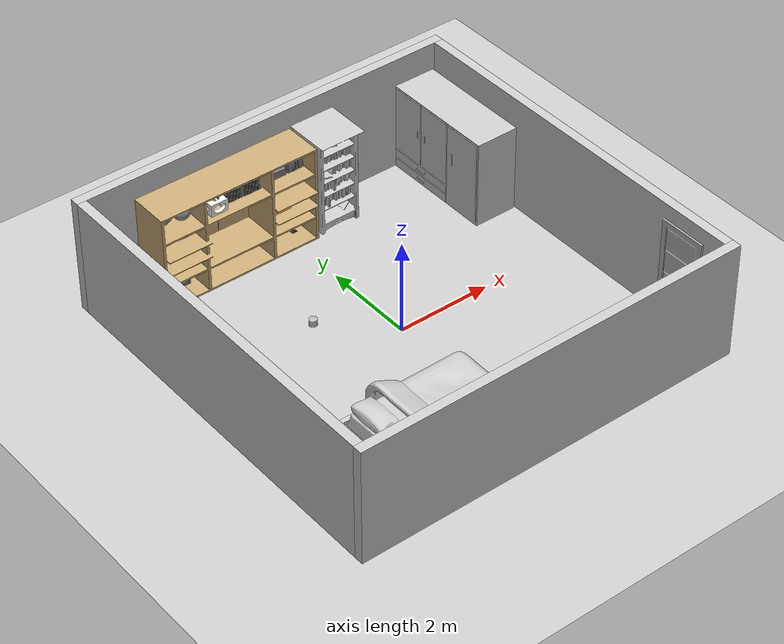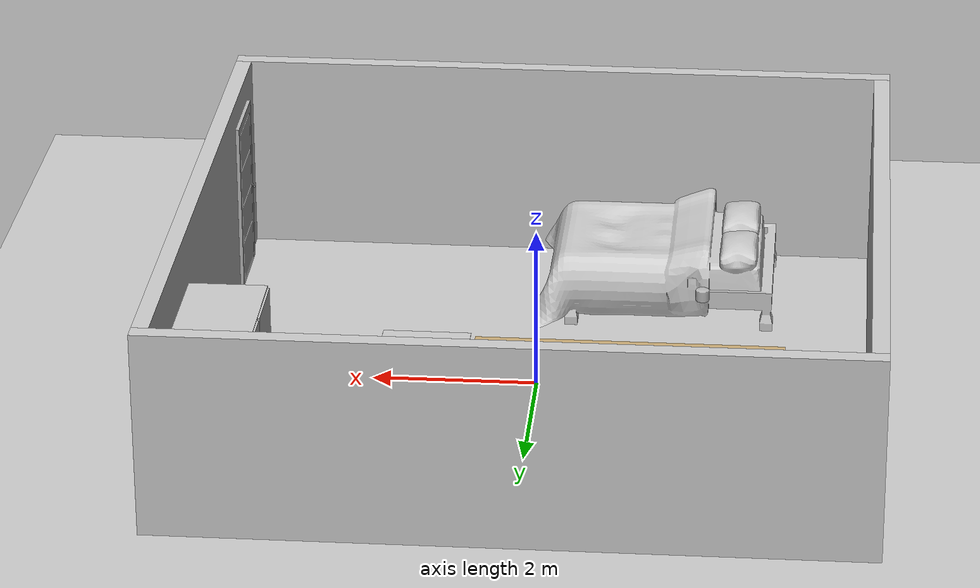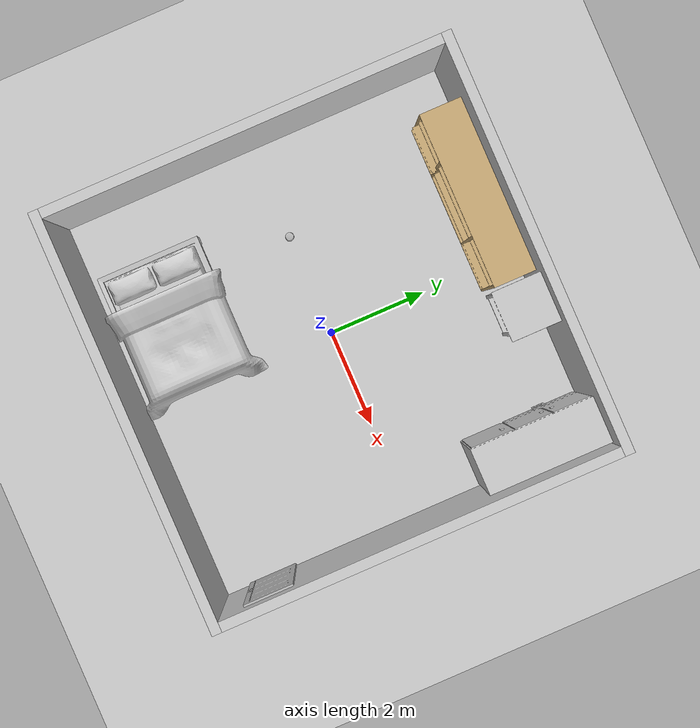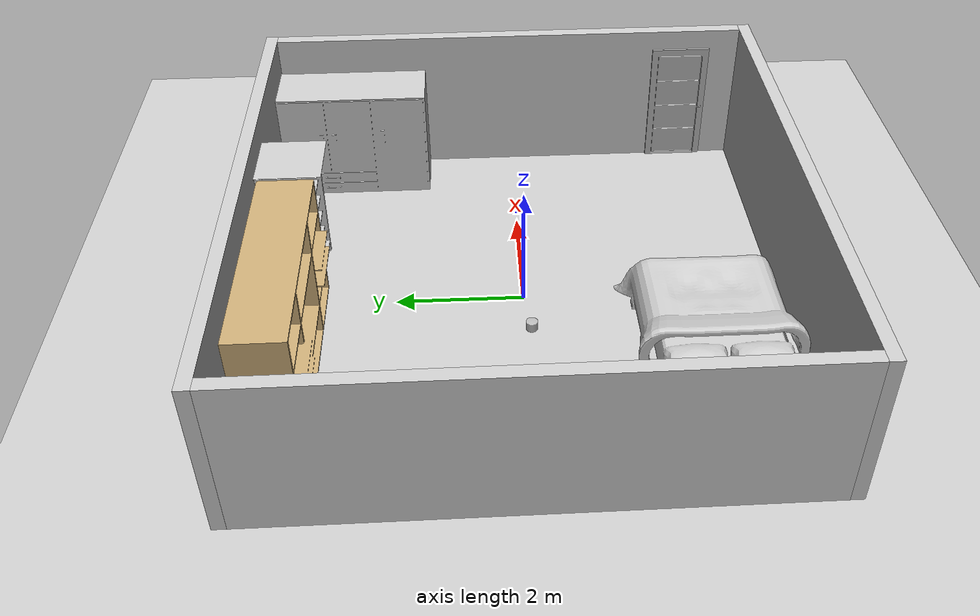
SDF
<sdf version="1.6">
 <world name="bedroom">
  <physics name="1ms" type="ignored">
   <max_step_size>0.001</max_step_size>
   <real_time_factor>1.0</real_time_factor>
  </physics>
  <plugin filename="gz-sim-physics-system" name="gz::sim::systems::Physics"/>
  <plugin filename="gz-sim-user-commands-system" name="gz::sim::systems::UserCommands"/>
  <plugin filename="gz-sim-scene-broadcaster-system" name="gz::sim::systems::SceneBroadcaster"/>
  <plugin filename="gz-sim-contact-system" name="gz::sim::systems::Contact"/>
  <plugin filename="libgz-sim-sensors-system.so" name="gz::sim::systems::Sensors">
   <render_engine>ogre2</render_engine>
  </plugin>
  <include><name>ground_plane</name><uri>gp_models/ground.sdf</uri></include>
  <include><name>light_model</name><uri>gp_models/light_model.sdf</uri></include>
  <include>
   <name>lidar_module</name>
   <uri>gp_models/lidar/lidar_module.sdf</uri>
   <pose>-2 0 1.2 0 0 0</pose>
  </include>
  <include><name>walls</name><uri>indoor_spaces/bedroom/walls.sdf</uri></include>
  <include>
   <name>bed</name>
   <uri>indoor_spaces/bedroom/bed.sdf</uri>
   <pose>-1.5 -2.75 0 0 0 3.14159</pose>
  </include>
  <include>
   <name>shelf1</name>
   <uri>indoor_spaces/bedroom/shelf1.sdf</uri>
   <pose>1 3.5 0 0 0 -1.570796</pose>
  </include>
  <include>
   <name>shelf2</name>
   <uri>indoor_spaces/bedroom/shelf2.sdf</uri>
   <pose>-1.3 3.5 0 0 0 -1.570796</pose>
  </include>
  <include>
   <name>closet1</name>
   <uri>indoor_spaces/bedroom/closet1.sdf</uri>
   <pose>3.5 2.75 0 0 0 3.14159</pose>
  </include>
  <include>
   <name>door</name>
   <uri>indoor_spaces/bedroom/door.sdf</uri>
   <pose>3.98 -3 0 0 0 3.14159</pose>
  </include>
 </world>
</sdf>

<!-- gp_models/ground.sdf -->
<sdf version="1.6">
	<model name="ground_plane">
		<static>true</static>
		<link name="link">
			<collision name="collision">
				<geometry>
					<plane>
						<normal>0 0 1</normal>
						<size>100 100</size>
					</plane>
				</geometry>
			</collision>
			<visual name="visual">
				<geometry>
					<plane>
						<normal>0 0 1</normal>
						<size>100 100</size>
					</plane>
				</geometry>
					<material>
						<ambient>0.8 0.8 0.8 1</ambient>
						<diffuse>0.8 0.8 0.8 1</diffuse>
						<specular>0.8 0.8 0.8 1</specular>
					</material>
			</visual>
		</link>
	</model>
</sdf>

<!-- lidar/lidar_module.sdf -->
<sdf version="1.6">
	<model name="lidar_module">
		<static>true</static>
		<link name="lidar_frame">
			<sensor name='gpu_lidar' type='gpu_lidar'>
				<pose>0 0 0 0 0 0</pose>
				<topic>lidar</topic>
				<update_rate>10</update_rate>
				<ray>
					<scan>
						<horizontal>
						    <samples>1024</samples>
						    <min_angle>0.0</min_angle>
						    <max_angle>6.2831</max_angle>
						</horizontal>
						<vertical>
						    <samples>64</samples>
						    <min_angle>-0.2897</min_angle>
						    <max_angle>0.2897</max_angle>
						</vertical>
					</scan>
					<range>
						<min>0.08</min>
						<max>100</max>
					</range>
					<noise>
						<type>gaussian</type>
						<mean>0.0</mean>
						<stddev>0.03</stddev>
					 </noise>
				</ray>
				<always_on>1</always_on>
				<visualize>true</visualize>
			</sensor>
			<visual name="lidar_visual">
				<geometry>
					<mesh>
				 		<uri>lidar_3d_v2.dae</uri>
				 	</mesh>
				 </geometry>
			</visual>
		</link>
	</model>
</sdf>

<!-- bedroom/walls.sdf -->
<sdf version="1.6">
	<model name="walls">
		<static>true</static>
		<pose>0 0 0 0 0 0</pose>
		<link name="north_wall">
			<pose>4.1 0 1.25 0 0 0</pose>
			<collision name="collision">
				<geometry>
					<box>
            			<size>0.20 8 2.5</size>
          			</box>
				</geometry>
			</collision>
			<visual name="visual">
				<geometry>
					<box>
            			<size>0.20 8 2.5</size>
          			</box>
				</geometry>
					<material>
						<ambient>0.8 0.8 0.8 1</ambient>
						<diffuse>0.8 0.8 0.8 1</diffuse>
						<specular>0.8 0.8 0.8 1</specular>
					</material>
					<transparency>0.1</transparency>
			</visual>
		</link>
		<link name="west_wall">
			<pose>0 4.1 1.25 0 0 1.5707963</pose>
			<collision name="collision">
				<geometry>
					<box>
            			<size>0.20 8.4 2.5</size>
          			</box>
				</geometry>
			</collision>
			<visual name="visual">
				<geometry>
					<box>
            			<size>0.20 8.4 2.5</size>
          			</box>
				</geometry>
					<material>
						<ambient>0.8 0.8 0.8 1</ambient>
						<diffuse>0.8 0.8 0.8 1</diffuse>
						<specular>0.8 0.8 0.8 1</specular>
					</material>
					<transparency>0.1</transparency>
			</visual>
		</link>
		<link name="east_wall">
			<pose>0 -4.1 1.25 0 0 1.5707963</pose>
			<collision name="collision">
				<geometry>
					<box>
            			<size>0.20 8.4 2.5</size>
          			</box>
				</geometry>
			</collision>
			<visual name="visual">
				<geometry>
					<box>
            			<size>0.20 8.4 2.5</size>
          			</box>
				</geometry>
					<material>
						<ambient>0.8 0.8 0.8 1</ambient>
						<diffuse>0.8 0.8 0.8 1</diffuse>
						<specular>0.8 0.8 0.8 1</specular>
					</material>
					<transparency>0.1</transparency>
			</visual>
		</link>
		<link name="south_wall">
			<pose>-4.1 0 1.25 0 0 0</pose>
			<collision name="collision">
				<geometry>
					<box>
            			<size>0.20 8 2.5</size>
          			</box>
				</geometry>
			</collision>
			<visual name="visual">
				<geometry>
					<box>
            			<size>0.20 8 2.5</size>
          			</box>
				</geometry>
					<material>
						<ambient>0.8 0.8 0.8 1</ambient>
						<diffuse>0.8 0.8 0.8 1</diffuse>
						<specular>0.8 0.8 0.8 1</specular>
					</material>
					<transparency>0.1</transparency>
			</visual>
		</link>
	</model>
</sdf>

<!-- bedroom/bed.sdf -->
<sdf version="1.6">
	<model name="bed">
		<static>true</static>
		<pose>0 0 0 0 0 0</pose>
		<link name="bed_axis">
			<collision name="collision">
				<geometry>
					<mesh>
						<uri>meshes/bed.dae</uri>
					</mesh>
				</geometry>
			</collision>
			<visual name="visual">
				<geometry>
					<mesh>
						<uri>meshes/bed.dae</uri>
					</mesh>
				</geometry>
			</visual>
		</link>
	</model>
</sdf>

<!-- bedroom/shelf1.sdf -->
<sdf version="1.6">
	<model name="shelf1">
		<static>true</static>
		<link name="bed_axis">
			<pose>0 0 0 0 0 0</pose>
			<collision name="collision">
				<geometry>
					<mesh>
						<uri>meshes/shelf1.dae</uri>
					</mesh>
				</geometry>
			</collision>
			<visual name="visual">
				<geometry>
					<mesh>
						<uri>meshes/shelf1.dae</uri>
					</mesh>
				</geometry>
			</visual>
		</link>
	</model>
</sdf>

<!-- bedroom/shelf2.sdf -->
<sdf version="1.6">
	<model name="shelf2">
		<static>true</static>
		<pose>0 0 0 0 0 0</pose>
		<link name="bed_axis">
			<collision name="collision">
				<geometry>
					<mesh>
						<uri>meshes/shelf2.dae</uri>
					</mesh>
				</geometry>
			</collision>
			<visual name="visual">
				<geometry>
					<mesh>
						<uri>meshes/shelf2.dae</uri>
					</mesh>
				</geometry>
			</visual>
		</link>
	</model>
</sdf>

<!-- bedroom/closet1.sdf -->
<sdf version="1.6">
	<model name="closet1">
		<static>true</static>
		<pose>0 0 0 0 0 0</pose>
		<link name="closetaxis">
			<collision name="collision">
				<geometry>
					<mesh>
						<uri>meshes/closet1.dae</uri>
					</mesh>
				</geometry>
			</collision>
			<visual name="visual">
				<geometry>
					<mesh>
						<uri>meshes/closet1.dae</uri>
					</mesh>
				</geometry>
			</visual>
		</link>
	</model>
</sdf>

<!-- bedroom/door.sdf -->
<sdf version="1.6">
	<model name="door">
		<static>true</static>
		<pose>0 0 0 0 0 0</pose>
		<link name="door_axis">
			<collision name="collision">
				<geometry>
					<mesh>
						<uri>meshes/door.dae</uri>
					</mesh>
				</geometry>
			</collision>
			<visual name="visual">
				<geometry>
					<mesh>
						<uri>meshes/door.dae</uri>
					</mesh>
				</geometry>
			</visual>
		</link>
	</model>
</sdf>
